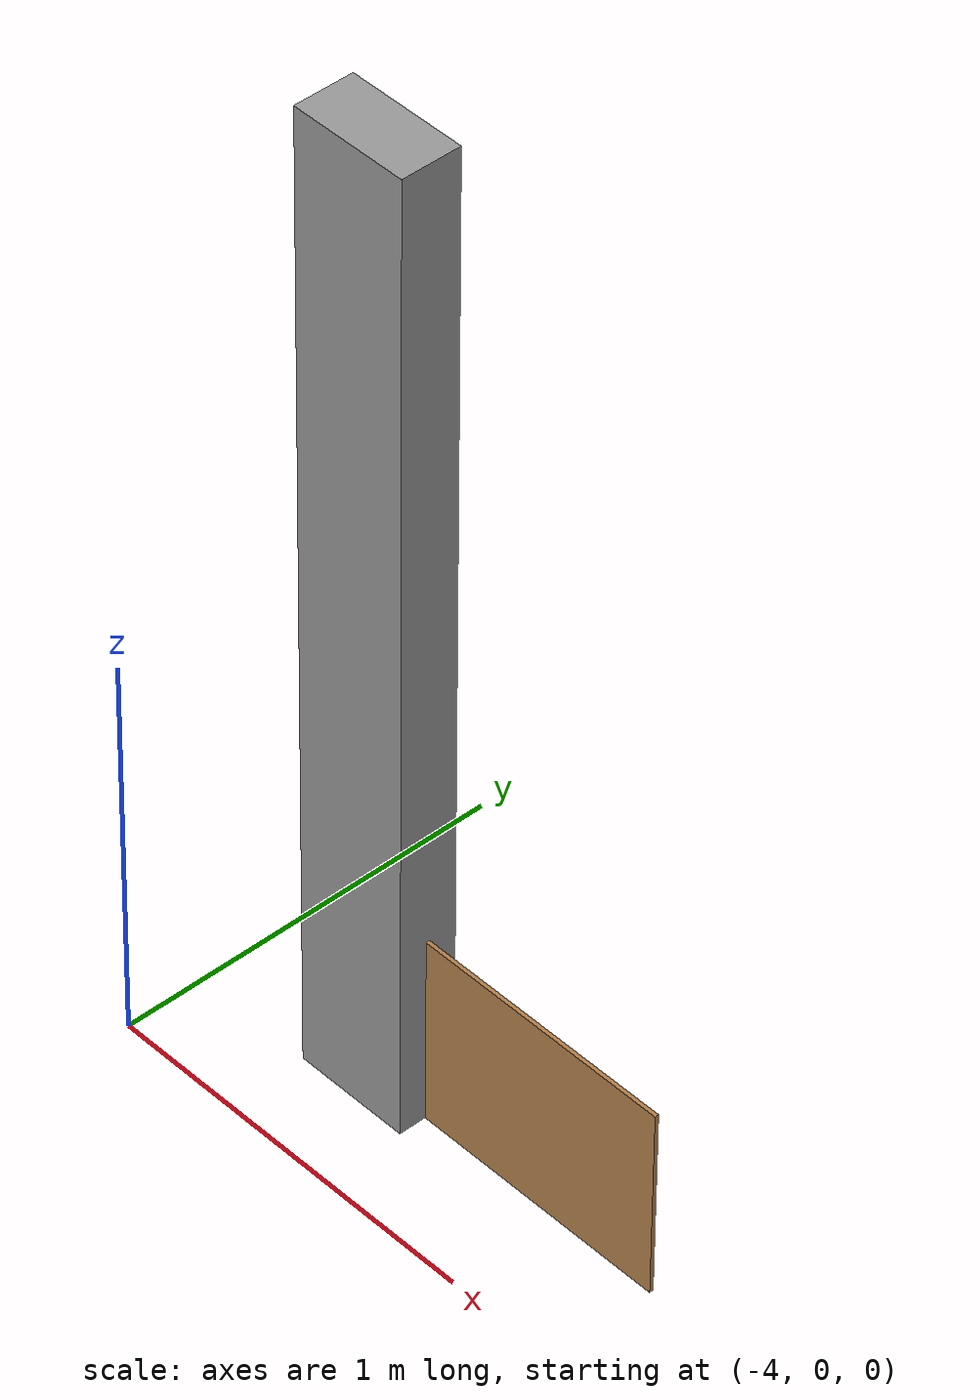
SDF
<?xml version='1.0'?>
<sdf version='1.7'>
  <model name='Fusta09'>
    <pose>-1.8425 0.1775 0 0 -0 0</pose>
    <link name='Wall_0'>
      <collision name='Wall_0_Collision'>
        <geometry>
          <box>
            <size>0.3 0.15 2.5</size>
          </box>
        </geometry>
        <pose>0 0 1.25 0 -0 0</pose>
      </collision>
      <visual name='Wall_0_Visual'>
        <pose>0 0 1.25 0 -0 0</pose>
        <geometry>
          <box>
            <size>0.3 0.15 2.5</size>
          </box>
        </geometry>
        <material>
          <script>
            <uri>file://media/materials/scripts/gazebo.material</uri>
            <name>Gazebo/Grey</name>
          </script>
          <ambient>1 1 1 1</ambient>
        </material>
        <meta>
          <layer>0</layer>
        </meta>
      </visual>
      <pose>-1.6925 0.1025 0 0 -0 3.14159</pose>
    </link>
    <link name='Wall_1'>
      <collision name='Wall_1_Collision'>
        <geometry>
          <box>
            <size>0.9 0.01 0.5</size>
          </box>
        </geometry>
        <pose>0 0 0.25 0 -0 0</pose>
      </collision>
      <visual name='Wall_1_Visual'>
        <pose>0 0 0.25 0 -0 0</pose>
        <geometry>
          <box>
            <size>0.9 0.01 0.5</size>
          </box>
        </geometry>
        <material>
          <script>
            <uri>file://media/materials/scripts/gazebo.material</uri>
            <name>Gazebo/Wood</name>
          </script>
          <ambient>1 1 1 1</ambient>
        </material>
        <meta>
          <layer>0</layer>
        </meta>
      </visual>
      <pose>-1.3225 0.1025 0 0 -0 0</pose>
    </link>
    <static>1</static>
  </model>
</sdf>
